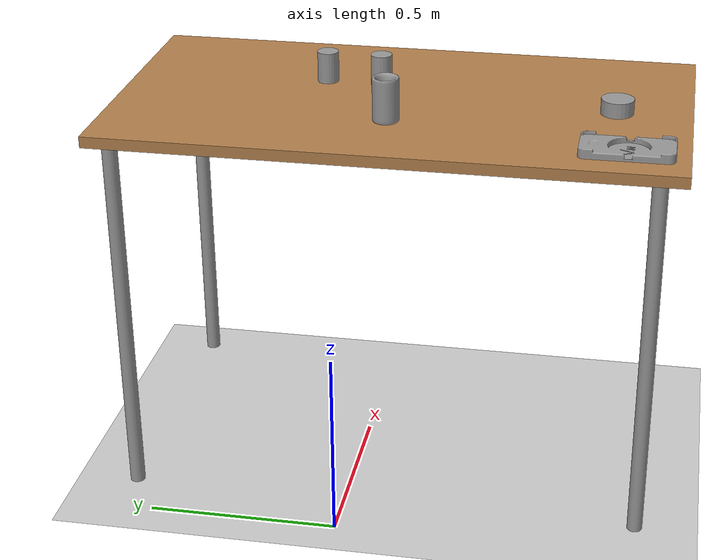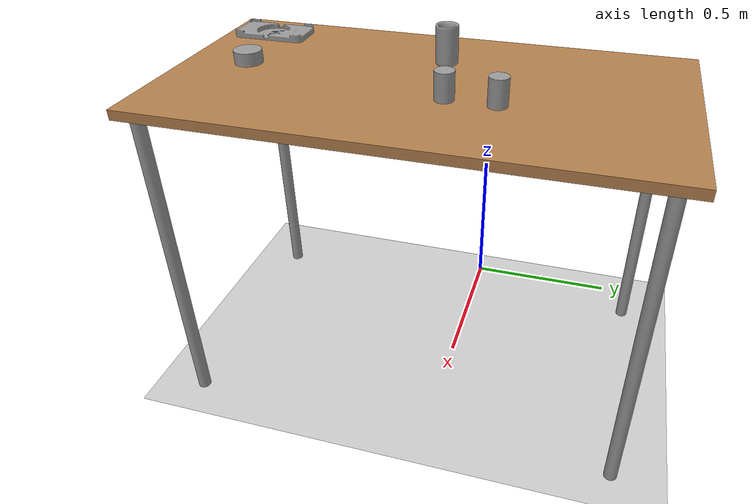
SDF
<sdf version="1.6">
 <world name="default">
  <model name="ground_plane">
   <static>1</static>
   <link name="link">
    <collision name="collision">
     <geometry><plane><normal>0 0 1</normal><size>100 100</size></plane></geometry>
     <surface><friction><ode><mu>100</mu><mu2>50</mu2></ode></friction></surface>
    </collision>
    <visual name="visual">
     <cast_shadows>0</cast_shadows>
     <geometry><plane><normal>0 0 1</normal><size>100 100</size></plane></geometry>
     <material>
      <script><uri>file://media/materials/scripts/gazebo.material</uri><name>Gazebo/Grey</name></script>
     </material>
    </visual>
   </link>
  </model>
  <light name="sun" type="directional">
   <pose>0 0 10 0 -0 0</pose>
   <diffuse>0.8 0.8 0.8 1</diffuse>
   <specular>0.2 0.2 0.2 1</specular>
   <attenuation>
    <range>1000</range>
    <constant>0.9</constant>
    <linear>0.01</linear>
    <quadratic>0.001</quadratic>
   </attenuation>
   <direction>-0.5 0.1 -0.9</direction>
  </light>
  <model name="table">
   <static>1</static>
   <link name="link">
    <collision name="surface">
     <pose>0 0 1 0 -0 0</pose>
     <geometry><box><size>1.5 0.8 0.03</size></box></geometry>
     <surface><friction><ode><mu>0.6</mu><mu2>0.6</mu2></ode></friction></surface>
    </collision>
    <visual name="visual1">
     <pose>0 0 1 0 -0 0</pose>
     <geometry><box><size>1.5 0.8 0.03</size></box></geometry>
     <material>
      <script><uri>file://media/materials/scripts/gazebo.material</uri><name>Gazebo/Wood</name></script>
     </material>
    </visual>
    <collision name="front_left_leg">
     <pose>0.68 0.38 0.5 0 -0 0</pose>
     <geometry><cylinder><radius>0.02</radius><length>1</length></cylinder></geometry>
    </collision>
    <visual name="front_left_leg">
     <pose>0.68 0.38 0.5 0 -0 0</pose>
     <geometry><cylinder><radius>0.02</radius><length>1</length></cylinder></geometry>
     <material>
      <script><uri>file://media/materials/scripts/gazebo.material</uri><name>Gazebo/Grey</name></script>
     </material>
    </visual>
    <collision name="front_right_leg">
     <pose>0.68 -0.38 0.5 0 -0 0</pose>
     <geometry><cylinder><radius>0.02</radius><length>1</length></cylinder></geometry>
    </collision>
    <visual name="front_right_leg">
     <pose>0.68 -0.38 0.5 0 -0 0</pose>
     <geometry><cylinder><radius>0.02</radius><length>1</length></cylinder></geometry>
     <material>
      <script><uri>file://media/materials/scripts/gazebo.material</uri><name>Gazebo/Grey</name></script>
     </material>
    </visual>
    <collision name="back_right_leg">
     <pose>-0.68 -0.38 0.5 0 -0 0</pose>
     <geometry><cylinder><radius>0.02</radius><length>1</length></cylinder></geometry>
    </collision>
    <visual name="back_right_leg">
     <pose>-0.68 -0.38 0.5 0 -0 0</pose>
     <geometry><cylinder><radius>0.02</radius><length>1</length></cylinder></geometry>
     <material>
      <script><uri>file://media/materials/scripts/gazebo.material</uri><name>Gazebo/Grey</name></script>
     </material>
    </visual>
    <collision name="back_left_leg">
     <pose>-0.68 0.38 0.5 0 -0 0</pose>
     <geometry><cylinder><radius>0.02</radius><length>1</length></cylinder></geometry>
    </collision>
    <visual name="back_left_leg">
     <pose>-0.68 0.38 0.5 0 -0 0</pose>
     <geometry><cylinder><radius>0.02</radius><length>1</length></cylinder></geometry>
     <material>
      <script><uri>file://media/materials/scripts/gazebo.material</uri><name>Gazebo/Grey</name></script>
     </material>
    </visual>
   </link>
   <pose>0.512126 -0.098069 0 0 -0 1.57</pose>
  </model>
  <physics name="default_physics" default="0" type="ode">
   <max_step_size>0.001</max_step_size>
   <real_time_factor>1</real_time_factor>
   <real_time_update_rate>1000</real_time_update_rate>
  </physics>
  <gravity>0 0 -9.81</gravity>
  <magnetic_field>6e-06 2.3e-05 -4.2e-05</magnetic_field>
  <atmosphere type="adiabatic"/>
  <scene><ambient>0.4 0.4 0.4 1</ambient><background>0.7 0.7 0.7 1</background><shadows>1</shadows></scene>
  <spherical_coordinates>
   <surface_model>EARTH_WGS84</surface_model>
   <latitude_deg>0</latitude_deg>
   <longitude_deg>0</longitude_deg>
   <elevation>0</elevation>
   <heading_deg>0</heading_deg>
  </spherical_coordinates>
  <model name="cup">
   <link name="link_1">
    <pose>4e-06 -3e-06 0 0 -0 0</pose>
    <inertial>
     <mass>1</mass>
     <inertia>
      <ixx>0.166667</ixx>
      <ixy>0</ixy>
      <ixz>0</ixz>
      <iyy>0.166667</iyy>
      <iyz>0</iyz>
      <izz>0.166667</izz>
     </inertia>
    </inertial>
    <visual name="visual">
     <geometry>
      <mesh>
       <uri>/home/zeal/xarm_ros/src/xarm6_moveit_config/objects/copinhooo/copinhooo.obj</uri>
       <scale>0.01 0.01 0.01</scale>
      </mesh>
     </geometry>
     <material>
      <lighting>1</lighting>
      <script><uri>file://media/materials/scripts/gazebo.material</uri><name>Gazebo/Grey</name></script>
      <shader type="pixel"/>
      <ambient>0.3 0.3 0.3 1</ambient>
      <diffuse>0.7 0.7 0.7 1</diffuse>
      <specular>0.01 0.01 0.01 1</specular>
      <emissive>0 0 0 1</emissive>
     </material>
    </visual>
    <collision name="collision">
     <geometry>
      <mesh>
       <uri>/home/zeal/xarm_ros/src/xarm6_moveit_config/objects/copinhooo/copinhooo.obj</uri>
       <scale>0.01 0.01 0.01</scale>
      </mesh>
     </geometry>
     <surface>
      <friction>
       <ode><mu>1</mu><mu2>1</mu2><fdir1>0 0 0</fdir1><slip1>0</slip1><slip2>0</slip2></ode>
       <torsional>
        <coefficient>1</coefficient>
        <patch_radius>0</patch_radius>
        <surface_radius>0</surface_radius>
        <use_patch_radius>1</use_patch_radius>
        <ode><slip>0</slip></ode>
       </torsional>
      </friction>
      <bounce><restitution_coefficient>0</restitution_coefficient><threshold>1e+06</threshold></bounce>
      <contact>
       <collide_without_contact>0</collide_without_contact>
       <collide_without_contact_bitmask>1</collide_without_contact_bitmask>
       <collide_bitmask>1</collide_bitmask>
       <ode>
        <soft_cfm>0</soft_cfm>
        <soft_erp>0.2</soft_erp>
        <kp>1e+13</kp>
        <kd>1</kd>
        <max_vel>0.01</max_vel>
        <min_depth>0</min_depth>
       </ode>
       <bullet>
        <split_impulse>1</split_impulse>
        <split_impulse_penetration_threshold>-0.01</split_impulse_penetration_threshold>
        <soft_cfm>0</soft_cfm>
        <soft_erp>0.2</soft_erp>
        <kp>1e+13</kp>
        <kd>1</kd>
       </bullet>
      </contact>
     </surface>
    </collision>
   </link>
   <static>0</static>
   <pose>0.34907 -0.078 1.03528 1.57065 -4.2e-05 0.000111</pose>
  </model>
  <model name="unit_cylinder">
   <pose>0.614816 0.127109 1.05664 3.14158 -0.00018 3.14113</pose>
   <link name="link">
    <inertial>
     <mass>1</mass>
     <inertia><ixx>0.145833</ixx><ixy>0</ixy><ixz>0</ixz><iyy>0.145833</iyy><iyz>0</iyz><izz>0.125</izz></inertia>
    </inertial>
    <collision name="collision">
     <geometry><cylinder><radius>0.028507</radius><length>0.083287</length></cylinder></geometry>
    </collision>
    <visual name="visual">
     <geometry><cylinder><radius>0.028507</radius><length>0.083287</length></cylinder></geometry>
     <material>
      <script><name>Gazebo/Grey</name><uri>file://media/materials/scripts/gazebo.material</uri></script>
     </material>
    </visual>
   </link>
  </model>
  <model name="unit_cylinder_clone">
   <pose>0.612713 -0.018647 1.05664 -0.000179 -3.6e-05 0.595256</pose>
   <link name="link">
    <inertial>
     <mass>1</mass>
     <inertia><ixx>0.145833</ixx><ixy>0</ixy><ixz>0</ixz><iyy>0.145833</iyy><iyz>0</iyz><izz>0.125</izz></inertia>
    </inertial>
    <collision name="collision">
     <geometry><cylinder><radius>0.028507</radius><length>0.0832871</length></cylinder></geometry>
    </collision>
    <visual name="visual">
     <geometry><cylinder><radius>0.028507</radius><length>0.0832871</length></cylinder></geometry>
     <material>
      <script><name>Gazebo/Grey</name><uri>file://media/materials/scripts/gazebo.material</uri></script>
     </material>
    </visual>
   </link>
  </model>
  <model name="charge">
   <link name="link_2">
    <pose>-3e-06 8e-06 0 0 -0 0</pose>
    <inertial>
     <mass>1</mass>
     <inertia>
      <ixx>0.166667</ixx>
      <ixy>0</ixy>
      <ixz>0</ixz>
      <iyy>0.166667</iyy>
      <iyz>0</iyz>
      <izz>0.166667</izz>
     </inertia>
    </inertial>
    <visual name="visual">
     <geometry>
      <mesh>
       <uri>/home/zeal/xarm_ros/src/xarm6_moveit_config/objects/LG_V30_Qi_Charging_Cradle/files/first_edition_logo.stl</uri>
       <scale>0.0015 0.0015 0.0015</scale>
      </mesh>
     </geometry>
     <material>
      <lighting>1</lighting>
      <script><uri>file://media/materials/scripts/gazebo.material</uri><name>Gazebo/Grey</name></script>
      <shader type="pixel"/>
      <ambient>0.3 0.3 0.3 1</ambient>
      <diffuse>0.7 0.7 0.7 1</diffuse>
      <specular>0.01 0.01 0.01 1</specular>
      <emissive>0 0 0 1</emissive>
     </material>
    </visual>
    <collision name="collision">
     <geometry>
      <mesh>
       <uri>/home/zeal/xarm_ros/src/xarm6_moveit_config/objects/LG_V30_Qi_Charging_Cradle/files/first_edition_logo.stl</uri>
       <scale>0.0015 0.0015 0.0015</scale>
      </mesh>
     </geometry>
     <surface>
      <friction>
       <ode><mu>1</mu><mu2>1</mu2><fdir1>0 0 0</fdir1><slip1>0</slip1><slip2>0</slip2></ode>
       <torsional>
        <coefficient>1</coefficient>
        <patch_radius>0</patch_radius>
        <surface_radius>0</surface_radius>
        <use_patch_radius>1</use_patch_radius>
        <ode><slip>0</slip></ode>
       </torsional>
      </friction>
      <bounce><restitution_coefficient>0</restitution_coefficient><threshold>1e+06</threshold></bounce>
      <contact>
       <collide_without_contact>0</collide_without_contact>
       <collide_without_contact_bitmask>1</collide_without_contact_bitmask>
       <collide_bitmask>1</collide_bitmask>
       <ode>
        <soft_cfm>0</soft_cfm>
        <soft_erp>0.2</soft_erp>
        <kp>1e+13</kp>
        <kd>1</kd>
        <max_vel>0.01</max_vel>
        <min_depth>0</min_depth>
       </ode>
       <bullet>
        <split_impulse>1</split_impulse>
        <split_impulse_penetration_threshold>-0.01</split_impulse_penetration_threshold>
        <soft_cfm>0</soft_cfm>
        <soft_erp>0.2</soft_erp>
        <kp>1e+13</kp>
        <kd>1</kd>
       </bullet>
      </contact>
     </surface>
    </collision>
   </link>
   <static>0</static>
   <pose>0.244229 -0.692003 1.015 -1.1e-05 -3e-06 -2e-06</pose>
  </model>
  <model name="unit_cylinder_1">
   <pose>0.500772 -0.653312 1.03477 3.13953 0.001245 3.14101</pose>
   <link name="link">
    <inertial>
     <mass>1</mass>
     <inertia><ixx>0.145833</ixx><ixy>0</ixy><ixz>0</ixz><iyy>0.145833</iyy><iyz>0</iyz><izz>0.125</izz></inertia>
    </inertial>
    <collision name="collision">
     <geometry><cylinder><radius>0.042809</radius><length>0.0408</length></cylinder></geometry>
    </collision>
    <visual name="visual">
     <geometry><cylinder><radius>0.042809</radius><length>0.0408</length></cylinder></geometry>
     <material>
      <script><name>Gazebo/Grey</name><uri>file://media/materials/scripts/gazebo.material</uri></script>
     </material>
    </visual>
   </link>
  </model>
 </world>
</sdf>
